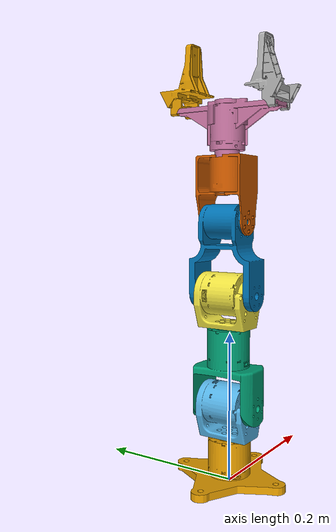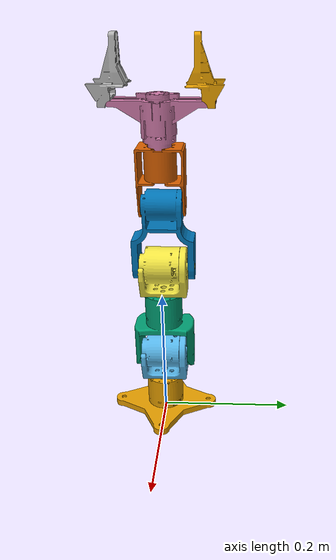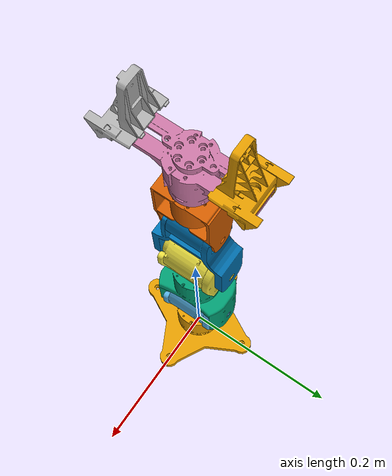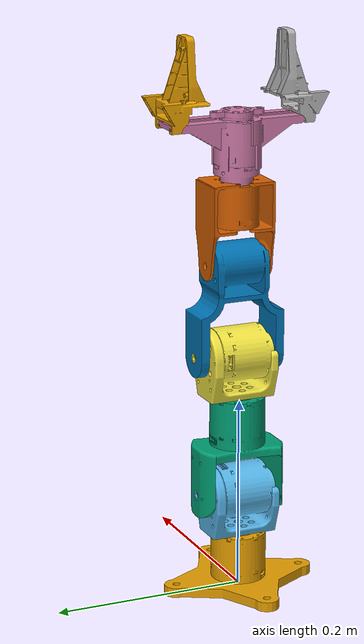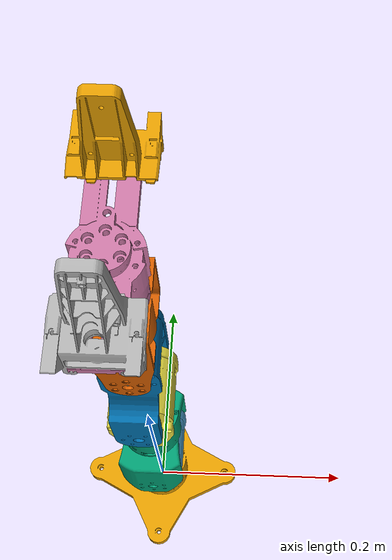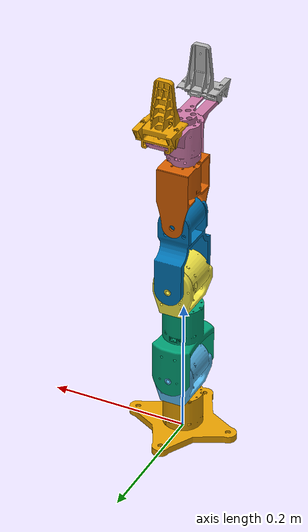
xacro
<?xml version="1.0"?>
<robot name="nxp_rs" xmlns:xacro="http://www.ros.org/wiki/xacro">
  <!-- Use the current robot model verbatim; this file only adds simulation I/O. -->
  <xacro:include filename="$(find nxp_rs_description)/urdf/nxp_rs.xacro"/>

  <!--
    Simulation-only ros2_control backend.  This is deliberately not the
    rs_control/RobstrideSystem plugin and therefore cannot open a CAN bus.
  -->
  <ros2_control name="nxp_rs_mock_system" type="system">
    <hardware>
      <plugin>mock_components/GenericSystem</plugin>
    </hardware>

    <joint name="joint-1">
      <command_interface name="position"/>
      <state_interface name="position"/>
      <state_interface name="velocity"/>
      <state_interface name="effort"/>
    </joint>
    <joint name="joint-2">
      <command_interface name="position"/>
      <state_interface name="position"/>
      <state_interface name="velocity"/>
      <state_interface name="effort"/>
    </joint>
    <joint name="joint-3">
      <command_interface name="position"/>
      <state_interface name="position"/>
      <state_interface name="velocity"/>
      <state_interface name="effort"/>
    </joint>
    <joint name="joint-4">
      <command_interface name="position"/>
      <state_interface name="position"/>
      <state_interface name="velocity"/>
      <state_interface name="effort"/>
    </joint>
    <joint name="joint-5">
      <command_interface name="position"/>
      <state_interface name="position"/>
      <state_interface name="velocity"/>
      <state_interface name="effort"/>
    </joint>
    <joint name="joint-6">
      <command_interface name="position"/>
      <state_interface name="position"/>
      <state_interface name="velocity"/>
      <state_interface name="effort"/>
    </joint>
    <joint name="joint_right-finger">
      <command_interface name="position"/>
      <state_interface name="position"/>
      <state_interface name="velocity"/>
      <state_interface name="effort"/>
    </joint>
  </ros2_control>
</robot>

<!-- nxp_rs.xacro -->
<robot name="nxp_rs" xmlns:xacro="http://www.ros.org/wiki/xacro">

    <link name="base_link">
        <visual>
            <!-- STL mounting axis is at (20.710, 1.520, 0) mm. -->
            <origin xyz="-0.020710 -0.001520 0.00" rpy="0.00 0.00 0.00"/>
            <geometry>
                <mesh filename="package://nxp_rs_description/meshes/base-link.STL"/>
            </geometry>
        </visual>

        <!-- SolidWorks: base-link-inertial.txt. -->
        <inertial>
            <origin xyz="0.000074 -0.000079 0.013768" rpy="0 0 0"/>
            <mass value="0.370000"/>
            <inertia ixx="0.000445" ixy="0.000001" ixz="-0.000001" iyy="0.000445" iyz="0.000001" izz="0.000672"/>
        </inertial>

        <collision>
            <origin xyz="-0.020710 -0.001520 0.00" rpy="0.00 0.00 0.00"/>
            <geometry>
                <mesh filename="package://nxp_rs_description/meshes/base-link-col.STL"/>
            </geometry>
        </collision>
    </link>

    <joint name="joint-1" type="revolute">
        <parent link="base_link"/>
        <child link="link_1"/>
        <origin xyz="0.00 0.00 0.06" rpy="0.00 0.00 0.00"/>
        <axis xyz="0 0 1"/>
        <limit lower="-3.14159" upper="3.14159" effort="1.0" velocity="1.0"/>
    </joint>

    <link name="link_1">
    <visual>
            <origin xyz="0.00 0.00 0.00" rpy="0.00 0.00 0.00"/>
            <geometry>
            <mesh filename="package://nxp_rs_description/meshes/link-1.STL"/>
            </geometry>
        </visual>

        <!-- SolidWorks: link-1-inertial.txt. -->
        <inertial>
            <origin xyz="-0.000147 0.003478 0.032860" rpy="0 0 0"/>
            <mass value="0.418000"/>
            <inertia ixx="0.000433" ixy="0.000000" ixz="0.000001" iyy="0.000278" iyz="-0.000018" izz="0.000345"/>
        </inertial>

        <collision>
            <origin xyz="0.00 0.00 0.00" rpy="0.00 0.00 0.00"/>
            <geometry>
                <mesh filename="package://nxp_rs_description/meshes/link-1-col.STL"/>
            </geometry>
        </collision>
    </link>

    <joint name="joint-2" type="revolute">
        <parent link="link_1"/>
        <child link="link_2"/>
        <origin xyz="0.00 -0.043 0.0445" rpy="0.00 0.00 0.00"/>
        <axis xyz="0 1 0"/>
        <limit lower="-3.14159" upper="3.14159" effort="1.0" velocity="1.0"/>
    </joint>

    <link name="link_2">
    <visual>
            <origin xyz="0.00 0.00 0.00" rpy="0.00 0.00 0.00"/>
            <geometry>
            <mesh filename="package://nxp_rs_description/meshes/link-2.STL"/>
            </geometry>
        </visual>

        <!-- SolidWorks: link-2-inertial.txt. -->
        <!-- Inferred CAD-to-link rotation: Rx(pi), from STL COM and tensor.
             Transform COM and tensor by R = diag(1, -1, -1).
             Values below are expressed in the link frame (rpy = 0). -->
        <inertial>
            <origin xyz="-0.000157 0.044590 0.044463" rpy="0 0 0"/>
            <mass value="0.405000"/>
            <inertia ixx="0.000779" ixy="0.000000" ixz="0.000001" iyy="0.000508" iyz="-0.000003" izz="0.000458"/>
        </inertial>

        <collision>
            <origin xyz="0.00 0.00 0.00" rpy="0.00 0.00 0.00"/>
            <geometry>
                <mesh filename="package://nxp_rs_description/meshes/link-2-col.STL"/>
            </geometry>
        </collision>
    </link>

    <joint name="joint-3" type="revolute">
        <parent link="link_2"/>
        <child link="link_3"/>
        <origin xyz="0.00 0.046 0.1030" rpy="0.00 0.00 0.00"/>
        <axis xyz="0 0 1"/>
        <limit lower="-3.14159" upper="3.14159" effort="1.0" velocity="1.0"/>
    </joint>

    <link name="link_3">
    <visual>
            <origin xyz="0.00 0.00 0.00" rpy="0.00 0.00 0.00"/>
            <geometry>
            <mesh filename="package://nxp_rs_description/meshes/link-3.STL"/>
            </geometry>
        </visual>

        <!-- SolidWorks: link-3-inertial.txt. -->
        <inertial>
            <origin xyz="0.000004 0.003478 0.033003" rpy="0 0 0"/>
            <mass value="0.418000"/>
            <inertia ixx="0.000436" ixy="0.000000" ixz="0.000000" iyy="0.000280" iyz="-0.000018" izz="0.000343"/>
        </inertial>

        <collision>
            <origin xyz="0.00 0.00 0.00" rpy="0.00 0.00 0.00"/>
            <geometry>
                <mesh filename="package://nxp_rs_description/meshes/link-3-col.STL"/>
            </geometry>
        </collision>
    </link>

    <joint name="joint-4" type="revolute">
        <parent link="link_3"/>
        <child link="link_4"/>
        <origin xyz="0.00 -0.043 0.0445" rpy="0.00 0.00 0.00"/>
        <axis xyz="0 1 0"/>
        <limit lower="-3.14159" upper="3.14159" effort="1.0" velocity="1.0"/>
    </joint>

    <link name="link_4">
    <visual>
            <!-- STL lower pivot is at (24.240, 0, 20.200) mm. -->
            <origin xyz="-0.024240 0.00 -0.020200" rpy="0.00 0.00 0.00"/>
            <geometry>
            <mesh filename="package://nxp_rs_description/meshes/link-4.STL"/>
            </geometry>
        </visual>

        <!-- SolidWorks: link-4-inertial.txt. -->
        <inertial>
            <origin xyz="0.000000 0.046390 0.067030" rpy="0 0 0"/>
            <mass value="0.260000"/>
            <inertia ixx="0.000525" ixy="0.000000" ixz="0.000000" iyy="0.000378" iyz="-0.000004" izz="0.000219"/>
        </inertial>

        <collision>
            <origin xyz="-0.024240 0.00 -0.020200" rpy="0.00 0.00 0.00"/>
            <geometry>
                <mesh filename="package://nxp_rs_description/meshes/link-4-col.STL"/>
            </geometry>
        </collision>
    </link>

    <joint name="joint-5" type="revolute">
        <parent link="link_4"/>
        <child link="link_5"/>
        <origin xyz="0.00 0.0125 0.095" rpy="0.00 0.00 0.00"/>
        <axis xyz="0 1 0"/>
        <limit lower="-3.14159" upper="3.14159" effort="1.0" velocity="1.0"/>
    </joint>

    <link name="link_5">
    <visual>
            <!-- STL pivot axis is offset by +23.230 mm along X. -->
            <origin xyz="-0.023230 0.00 0.00" rpy="0.00 0.00 0.00"/>
            <geometry>
            <mesh filename="package://nxp_rs_description/meshes/link-5.STL"/>
            </geometry>
        </visual>

        <!-- SolidWorks: link-5-inertial.txt. -->
        <inertial>
            <origin xyz="0.000002 0.032891 0.055468" rpy="0 0 0"/>
            <mass value="0.237000"/>
            <inertia ixx="0.000179" ixy="0.000000" ixz="0.000000" iyy="0.000127" iyz="0.000002" izz="0.000121"/>
        </inertial>

        <collision>
            <!-- Collision STL is 17.675 mm higher than the visual STL. -->
            <origin xyz="-0.023230 0.00 -0.017675" rpy="0.00 0.00 0.00"/>
            <geometry>
                <mesh filename="package://nxp_rs_description/meshes/link-5-col.STL"/>
            </geometry>
        </collision>
    </link>

    <joint name="joint-6" type="revolute">
        <parent link="link_5"/>
        <child link="palm"/>
        <origin xyz="0.00 0.0322 0.0824" rpy="0.00 0.00 0.00"/>
        <axis xyz="0 0 1"/>
        <limit lower="-3.14159" upper="3.14159" effort="1.0" velocity="1.0"/>
    </joint>

    <link name="palm">
    <visual>
            <!-- STL wrist mounting axis is at (16.463, 16.463, 0) mm. -->
            <origin xyz="-0.016463 -0.016463 0.00" rpy="0.00 0.00 0.00"/>
            <geometry>
            <mesh filename="package://nxp_rs_description/meshes/palm.STL"/>
            </geometry>
        </visual>

        <!-- SolidWorks: palm-inertial.txt. -->
        <inertial>
            <origin xyz="0.000001 -0.000001 0.042057" rpy="0 0 0"/>
            <mass value="0.270000"/>
            <inertia ixx="0.000232" ixy="0.000000" ixz="0.000000" iyy="0.000131" iyz="0.000000" izz="0.000178"/>
        </inertial>

        <collision>
            <!-- Collision STL centre differs from the visual export origin. -->
            <origin xyz="-0.0256281 -0.0778969 0.00" rpy="0.00 0.00 0.00"/>
            <geometry>
                <mesh filename="package://nxp_rs_description/meshes/palm-col.STL"/>
            </geometry>
        </collision>
    </link>

    <link name="right-finger">
    <visual>
            <!-- Align STL to the supplied SolidWorks Coordinate System1:
                 mounting plane Y = 12.0597 mm, X offset = 12.928 mm. -->
            <origin xyz="-0.012928 -0.0120597 0.00" rpy="0.00 0.00 0.00"/>
            <geometry>
            <mesh filename="package://nxp_rs_description/meshes/right-finger.STL"/>
            </geometry>
        </visual>

        <!-- SolidWorks: right-finger-inertial.txt. -->
        <inertial>
            <origin xyz="0.016200 0.014852 0.031385" rpy="0 0 0"/>
            <mass value="0.033000"/>
            <inertia ixx="0.000017" ixy="0.000000" ixz="0.000000" iyy="0.000021" iyz="-0.000003" izz="0.000011"/>
        </inertial>

        <collision>
            <origin xyz="-0.012928 -0.0120597 0.00" rpy="0.00 0.00 0.00"/>
            <geometry>
                <mesh filename="package://nxp_rs_description/meshes/right-finger.STL"/>
            </geometry>
        </collision>
    </link>

    <joint name="joint_right-finger" type="prismatic">
        <parent link="palm"/>
        <child link="right-finger"/>
        <origin xyz="-0.013525 -0.077126 0.060400" rpy="0.00 0.00 0.00"/>
        <axis xyz="0 1 0"/>
        <limit lower="-0.1" upper="0.1" effort="1.0" velocity="1.0"/>
    </joint>

    <link name="left-finger">
    <visual>
            <!-- Align STL to the supplied SolidWorks Coordinate System1:
                 mounting plane Y = 40.1475 mm, X offset = 12.928 mm. -->
            <origin xyz="-0.012928 -0.0401475 0.00" rpy="0.00 0.00 0.00"/>
            <geometry>
            <mesh filename="package://nxp_rs_description/meshes/left-finger.STL"/>
            </geometry>
        </visual>

        <!-- SolidWorks: left-finger-inertial.txt. -->
        <inertial>
            <origin xyz="0.016200 -0.014852 0.031385" rpy="0 0 0"/>
            <mass value="0.033000"/>
            <inertia ixx="0.000017" ixy="0.000000" ixz="0.000000" iyy="0.000021" iyz="0.000003" izz="0.000011"/>
        </inertial>

        <collision>
            <origin xyz="-0.012928 -0.0401475 0.00" rpy="0.00 0.00 0.00"/>
            <geometry>
                <mesh filename="package://nxp_rs_description/meshes/left-finger.STL"/>
            </geometry>
        </collision>
    </link>

    <joint name="joint_left-finger" type="prismatic">
        <parent link="palm"/>
        <child link="left-finger"/>
        <origin xyz="-0.013525 0.077126 0.060400" rpy="0.00 0.00 0.00"/>
        <axis xyz="0 1 0"/>
        <limit lower="-0.1" upper="0.1" effort="1.0" velocity="1.0"/>
        <!-- One physical actuator drives both mirrored fingers. -->
        <mimic joint="joint_right-finger" multiplier="-1.0" offset="0.0"/>
    </joint>

</robot>
